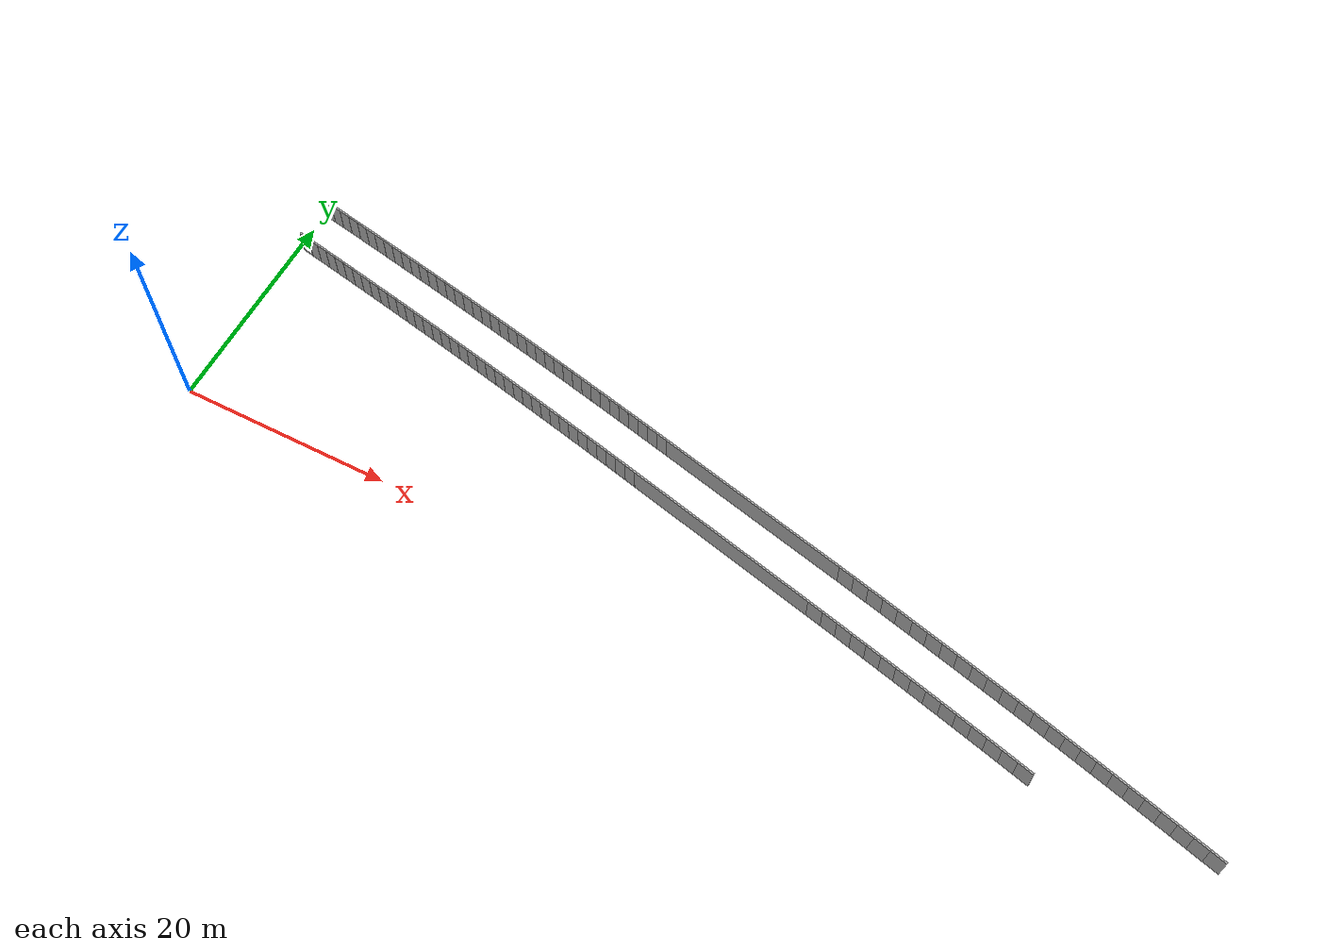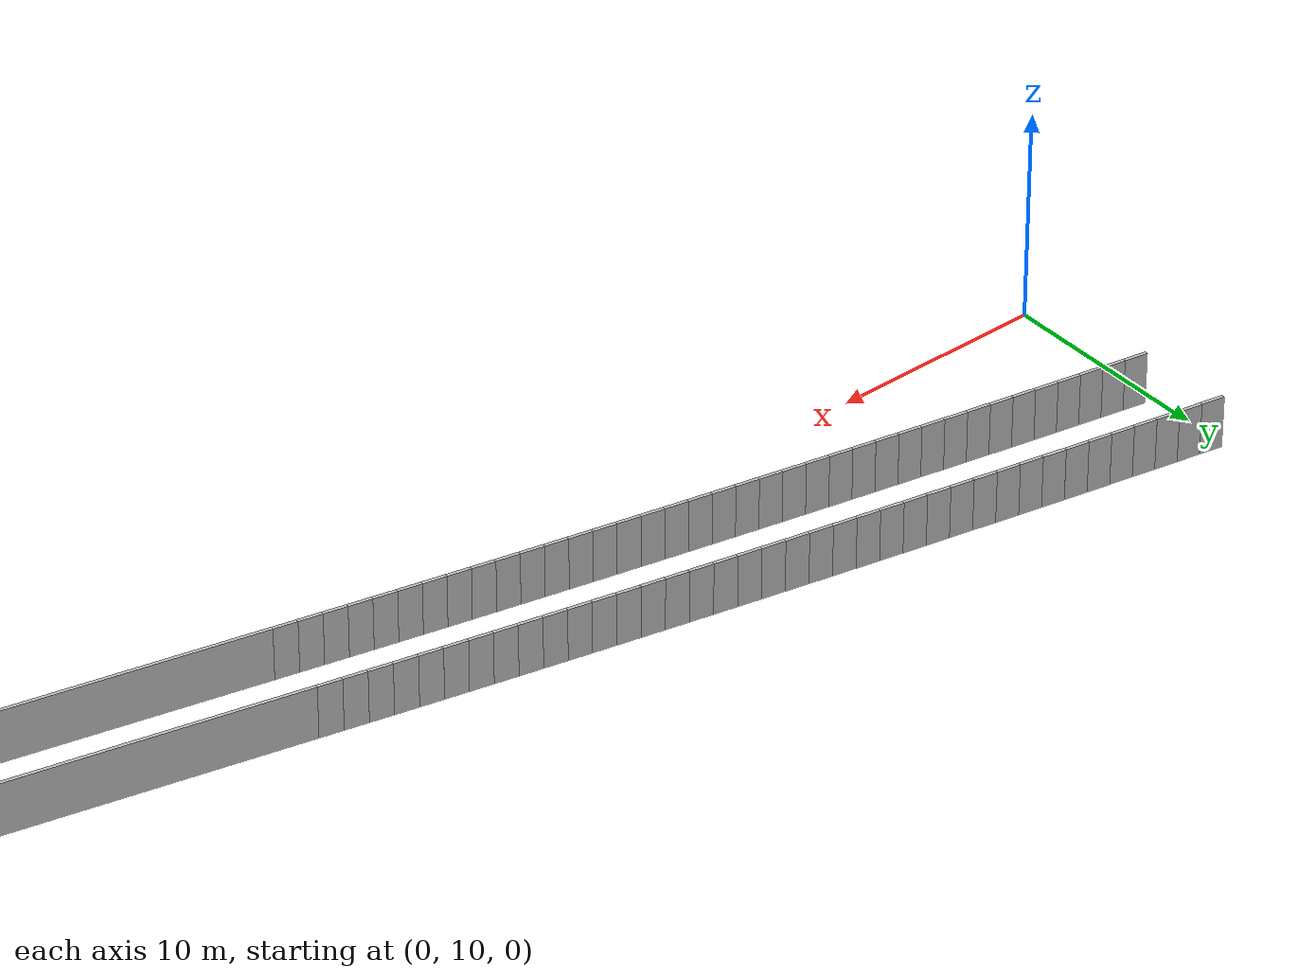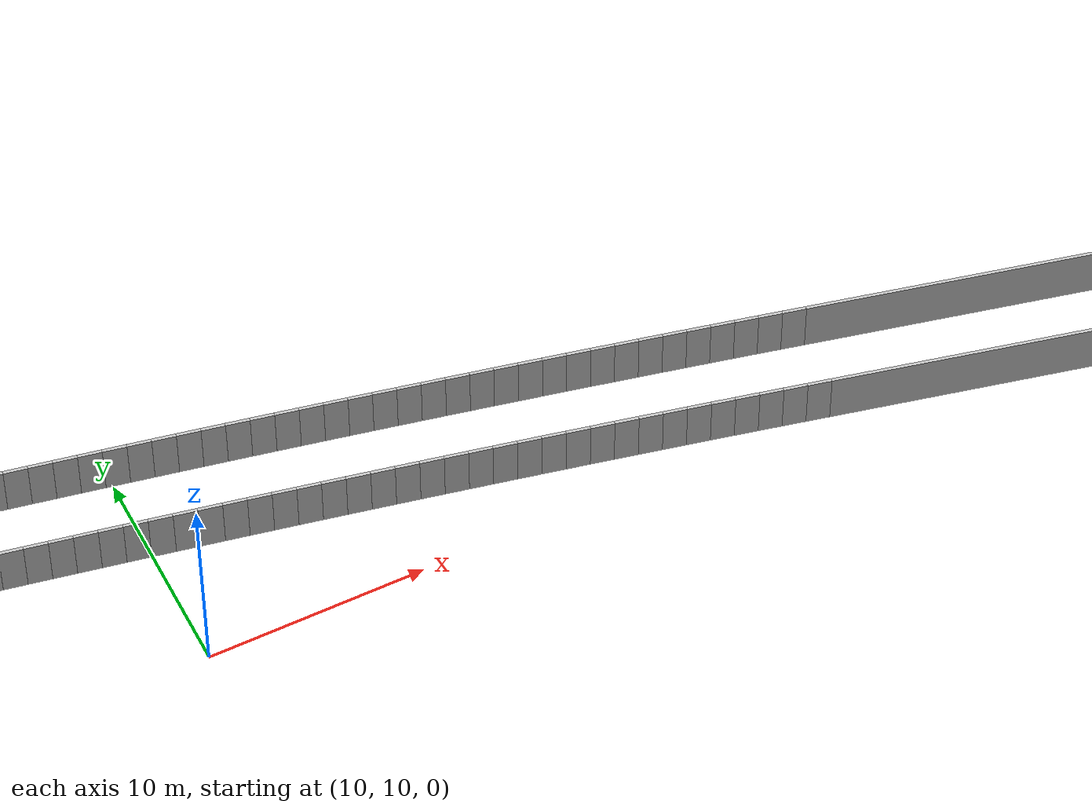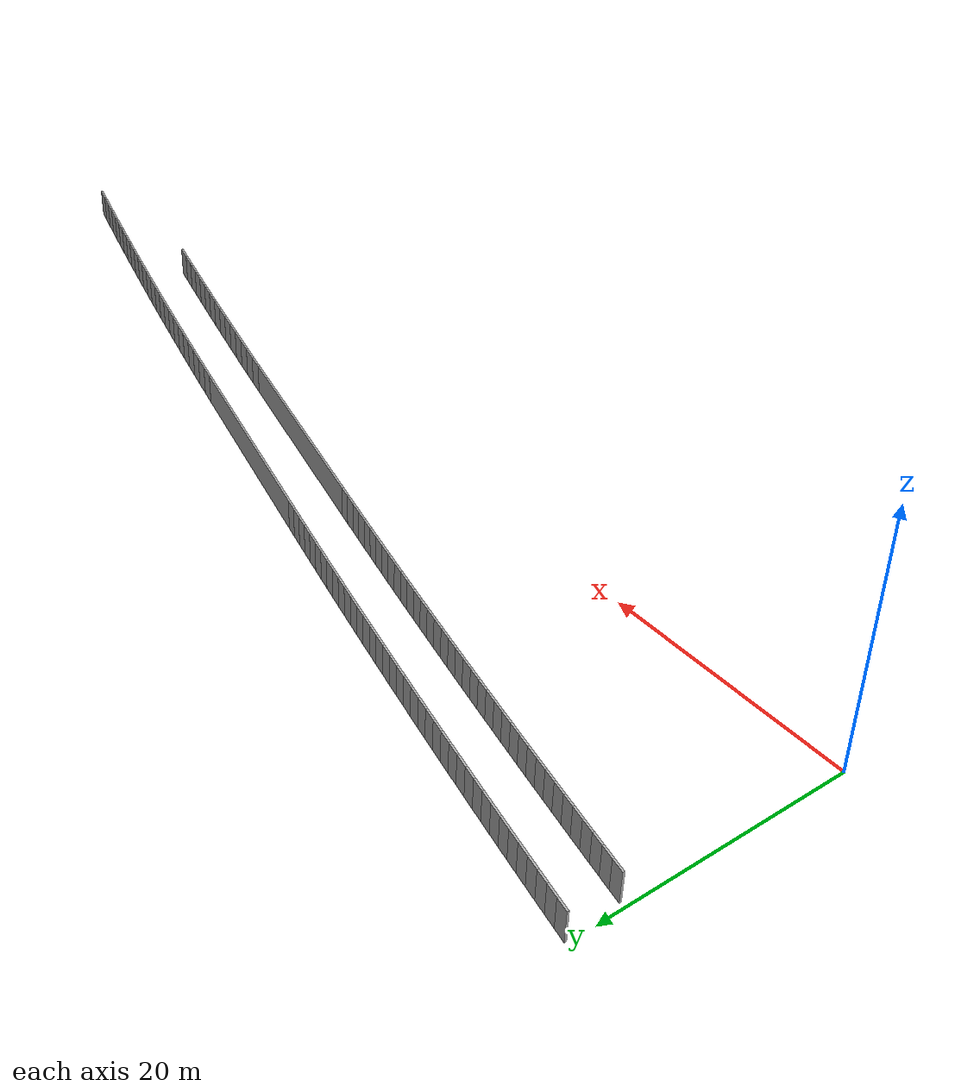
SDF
<sdf version="1.6">
 <model name="sps_1523">
  <static>1</static>
  <allow_auto_disable>0</allow_auto_disable>
  <link name="Wall318">
   <collision name="collision"><geometry><box><size>18.671 0.15 2.5</size></box></geometry></collision>
   <visual name="visual">
    <geometry><box><size>18.671 0.15 2.5</size></box></geometry>
    <transparency>0.0</transparency>
   </visual>
   <pose>48.5033 7.4247 1.25 0 -0 2.91246</pose>
  </link>
  <link name="Wall650">
   <collision name="collision"><geometry><box><size>18.6821 0.15 2.5</size></box></geometry></collision>
   <visual name="visual">
    <geometry><box><size>18.6821 0.15 2.5</size></box></geometry>
    <transparency>0.0</transparency>
   </visual>
   <pose>49.4523 11.4541 1.25 0 0 -0.229081</pose>
  </link>
  <link name="Wall8144">
   <collision name="collision"><geometry><box><size>1.07591 0.15 2.5</size></box></geometry></collision>
   <visual name="visual">
    <geometry><box><size>1.07591 0.15 2.5</size></box></geometry>
    <transparency>0.0</transparency>
   </visual>
   <pose>38.8879 9.66731 1.25 0 -0 2.91245</pose>
  </link>
  <link name="Wall8145">
   <collision name="collision"><geometry><box><size>1.07587 0.15 2.5</size></box></geometry></collision>
   <visual name="visual">
    <geometry><box><size>1.07587 0.15 2.5</size></box></geometry>
    <transparency>0.0</transparency>
   </visual>
   <pose>37.84 9.91121 1.25 0 -0 2.91337</pose>
  </link>
  <link name="Wall8146">
   <collision name="collision"><geometry><box><size>1.07597 0.15 2.5</size></box></geometry></collision>
   <visual name="visual">
    <geometry><box><size>1.07597 0.15 2.5</size></box></geometry>
    <transparency>0.0</transparency>
   </visual>
   <pose>36.7919 10.1539 1.25 0 -0 2.91473</pose>
  </link>
  <link name="Wall8147">
   <collision name="collision"><geometry><box><size>1.07592 0.15 2.5</size></box></geometry></collision>
   <visual name="visual">
    <geometry><box><size>1.07592 0.15 2.5</size></box></geometry>
    <transparency>0.0</transparency>
   </visual>
   <pose>35.7434 10.3954 1.25 0 -0 2.91571</pose>
  </link>
  <link name="Wall8148">
   <collision name="collision"><geometry><box><size>1.07607 0.15 2.5</size></box></geometry></collision>
   <visual name="visual">
    <geometry><box><size>1.07607 0.15 2.5</size></box></geometry>
    <transparency>0.0</transparency>
   </visual>
   <pose>34.6946 10.6358 1.25 0 -0 2.91685</pose>
  </link>
  <link name="Wall8149">
   <collision name="collision"><geometry><box><size>1.07598 0.15 2.5</size></box></geometry></collision>
   <visual name="visual">
    <geometry><box><size>1.07598 0.15 2.5</size></box></geometry>
    <transparency>0.0</transparency>
   </visual>
   <pose>33.6455 10.875 1.25 0 -0 2.918</pose>
  </link>
  <link name="Wall8150">
   <collision name="collision"><geometry><box><size>1.07596 0.15 2.5</size></box></geometry></collision>
   <visual name="visual">
    <geometry><box><size>1.07596 0.15 2.5</size></box></geometry>
    <transparency>0.0</transparency>
   </visual>
   <pose>32.5962 11.113 1.25 0 -0 2.9191</pose>
  </link>
  <link name="Wall8151">
   <collision name="collision"><geometry><box><size>1.07581 0.15 2.5</size></box></geometry></collision>
   <visual name="visual">
    <geometry><box><size>1.07581 0.15 2.5</size></box></geometry>
    <transparency>0.0</transparency>
   </visual>
   <pose>31.5467 11.3498 1.25 0 -0 2.92023</pose>
  </link>
  <link name="Wall8152">
   <collision name="collision"><geometry><box><size>1.07596 0.15 2.5</size></box></geometry></collision>
   <visual name="visual">
    <geometry><box><size>1.07596 0.15 2.5</size></box></geometry>
    <transparency>0.0</transparency>
   </visual>
   <pose>30.4969 11.5854 1.25 0 -0 2.92142</pose>
  </link>
  <link name="Wall8153">
   <collision name="collision"><geometry><box><size>1.07595 0.15 2.5</size></box></geometry></collision>
   <visual name="visual">
    <geometry><box><size>1.07595 0.15 2.5</size></box></geometry>
    <transparency>0.0</transparency>
   </visual>
   <pose>29.4468 11.8198 1.25 0 -0 2.92252</pose>
  </link>
  <link name="Wall8154">
   <collision name="collision"><geometry><box><size>1.07603 0.15 2.5</size></box></geometry></collision>
   <visual name="visual">
    <geometry><box><size>1.07603 0.15 2.5</size></box></geometry>
    <transparency>0.0</transparency>
   </visual>
   <pose>28.3964 12.053 1.25 0 -0 2.92376</pose>
  </link>
  <link name="Wall8155">
   <collision name="collision"><geometry><box><size>1.07597 0.15 2.5</size></box></geometry></collision>
   <visual name="visual">
    <geometry><box><size>1.07597 0.15 2.5</size></box></geometry>
    <transparency>0.0</transparency>
   </visual>
   <pose>27.3457 12.285 1.25 0 -0 2.92479</pose>
  </link>
  <link name="Wall8156">
   <collision name="collision"><geometry><box><size>1.07593 0.15 2.5</size></box></geometry></collision>
   <visual name="visual">
    <geometry><box><size>1.07593 0.15 2.5</size></box></geometry>
    <transparency>0.0</transparency>
   </visual>
   <pose>26.2948 12.5158 1.25 0 -0 2.92601</pose>
  </link>
  <link name="Wall8157">
   <collision name="collision"><geometry><box><size>1.07586 0.15 2.5</size></box></geometry></collision>
   <visual name="visual">
    <geometry><box><size>1.07586 0.15 2.5</size></box></geometry>
    <transparency>0.0</transparency>
   </visual>
   <pose>25.2436 12.7454 1.25 0 -0 2.9271</pose>
  </link>
  <link name="Wall8158">
   <collision name="collision"><geometry><box><size>1.07601 0.15 2.5</size></box></geometry></collision>
   <visual name="visual">
    <geometry><box><size>1.07601 0.15 2.5</size></box></geometry>
    <transparency>0.0</transparency>
   </visual>
   <pose>24.1923 12.9739 1.25 0 -0 2.92805</pose>
  </link>
  <link name="Wall8159">
   <collision name="collision"><geometry><box><size>1.07594 0.15 2.5</size></box></geometry></collision>
   <visual name="visual">
    <geometry><box><size>1.07594 0.15 2.5</size></box></geometry>
    <transparency>0.0</transparency>
   </visual>
   <pose>23.1406 13.2012 1.25 0 -0 2.92943</pose>
  </link>
  <link name="Wall8160">
   <collision name="collision"><geometry><box><size>1.07606 0.15 2.5</size></box></geometry></collision>
   <visual name="visual">
    <geometry><box><size>1.07606 0.15 2.5</size></box></geometry>
    <transparency>0.0</transparency>
   </visual>
   <pose>22.0886 13.4272 1.25 0 -0 2.93056</pose>
  </link>
  <link name="Wall8161">
   <collision name="collision"><geometry><box><size>1.07582 0.15 2.5</size></box></geometry></collision>
   <visual name="visual">
    <geometry><box><size>1.07582 0.15 2.5</size></box></geometry>
    <transparency>0.0</transparency>
   </visual>
   <pose>21.0364 13.652 1.25 0 -0 2.93161</pose>
  </link>
  <link name="Wall8162">
   <collision name="collision"><geometry><box><size>1.07597 0.15 2.5</size></box></geometry></collision>
   <visual name="visual">
    <geometry><box><size>1.07597 0.15 2.5</size></box></geometry>
    <transparency>0.0</transparency>
   </visual>
   <pose>19.984 13.8756 1.25 0 -0 2.93286</pose>
  </link>
  <link name="Wall8163">
   <collision name="collision"><geometry><box><size>1.07609 0.15 2.5</size></box></geometry></collision>
   <visual name="visual">
    <geometry><box><size>1.07609 0.15 2.5</size></box></geometry>
    <transparency>0.0</transparency>
   </visual>
   <pose>18.9312 14.098 1.25 0 -0 2.93399</pose>
  </link>
  <link name="Wall8164">
   <collision name="collision"><geometry><box><size>1.07594 0.15 2.5</size></box></geometry></collision>
   <visual name="visual">
    <geometry><box><size>1.07594 0.15 2.5</size></box></geometry>
    <transparency>0.0</transparency>
   </visual>
   <pose>17.8782 14.3193 1.25 0 -0 2.93489</pose>
  </link>
  <link name="Wall8165">
   <collision name="collision"><geometry><box><size>1.07602 0.15 2.5</size></box></geometry></collision>
   <visual name="visual">
    <geometry><box><size>1.07602 0.15 2.5</size></box></geometry>
    <transparency>0.0</transparency>
   </visual>
   <pose>16.8249 14.5394 1.25 0 -0 2.93623</pose>
  </link>
  <link name="Wall8166">
   <collision name="collision"><geometry><box><size>1.07593 0.15 2.5</size></box></geometry></collision>
   <visual name="visual">
    <geometry><box><size>1.07593 0.15 2.5</size></box></geometry>
    <transparency>0.0</transparency>
   </visual>
   <pose>15.7714 14.7582 1.25 0 -0 2.93743</pose>
  </link>
  <link name="Wall8167">
   <collision name="collision"><geometry><box><size>1.07589 0.15 2.5</size></box></geometry></collision>
   <visual name="visual">
    <geometry><box><size>1.07589 0.15 2.5</size></box></geometry>
    <transparency>0.0</transparency>
   </visual>
   <pose>14.7178 14.9758 1.25 0 -0 2.93847</pose>
  </link>
  <link name="Wall8168">
   <collision name="collision"><geometry><box><size>1.07605 0.15 2.5</size></box></geometry></collision>
   <visual name="visual">
    <geometry><box><size>1.07605 0.15 2.5</size></box></geometry>
    <transparency>0.0</transparency>
   </visual>
   <pose>13.6638 15.1922 1.25 0 -0 2.93971</pose>
  </link>
  <link name="Wall8169">
   <collision name="collision"><geometry><box><size>1.07606 0.15 2.5</size></box></geometry></collision>
   <visual name="visual">
    <geometry><box><size>1.07606 0.15 2.5</size></box></geometry>
    <transparency>0.0</transparency>
   </visual>
   <pose>12.6095 15.4074 1.25 0 -0 2.94082</pose>
  </link>
  <link name="Wall8170">
   <collision name="collision"><geometry><box><size>1.07577 0.15 2.5</size></box></geometry></collision>
   <visual name="visual">
    <geometry><box><size>1.07577 0.15 2.5</size></box></geometry>
    <transparency>0.0</transparency>
   </visual>
   <pose>11.555 15.6214 1.25 0 -0 2.94186</pose>
  </link>
  <link name="Wall8171">
   <collision name="collision"><geometry><box><size>1.07616 0.15 2.5</size></box></geometry></collision>
   <visual name="visual">
    <geometry><box><size>1.07616 0.15 2.5</size></box></geometry>
    <transparency>0.0</transparency>
   </visual>
   <pose>10.5004 15.8343 1.25 0 -0 2.94292</pose>
  </link>
  <link name="Wall8172">
   <collision name="collision"><geometry><box><size>1.07589 0.15 2.5</size></box></geometry></collision>
   <visual name="visual">
    <geometry><box><size>1.07589 0.15 2.5</size></box></geometry>
    <transparency>0.0</transparency>
   </visual>
   <pose>9.44537 16.046 1.25 0 -0 2.9442</pose>
  </link>
  <link name="Wall8173">
   <collision name="collision"><geometry><box><size>1.07607 0.15 2.5</size></box></geometry></collision>
   <visual name="visual">
    <geometry><box><size>1.07607 0.15 2.5</size></box></geometry>
    <transparency>0.0</transparency>
   </visual>
   <pose>8.39016 16.2564 1.25 0 -0 2.94539</pose>
  </link>
  <link name="Wall8174">
   <collision name="collision"><geometry><box><size>1.07584 0.15 2.5</size></box></geometry></collision>
   <visual name="visual">
    <geometry><box><size>1.07584 0.15 2.5</size></box></geometry>
    <transparency>0.0</transparency>
   </visual>
   <pose>7.33474 16.4656 1.25 0 -0 2.94644</pose>
  </link>
  <link name="Wall8175">
   <collision name="collision"><geometry><box><size>1.07596 0.15 2.5</size></box></geometry></collision>
   <visual name="visual">
    <geometry><box><size>1.07596 0.15 2.5</size></box></geometry>
    <transparency>0.0</transparency>
   </visual>
   <pose>6.27914 16.6736 1.25 0 -0 2.94762</pose>
  </link>
  <link name="Wall8176">
   <collision name="collision"><geometry><box><size>1.07591 0.15 2.5</size></box></geometry></collision>
   <visual name="visual">
    <geometry><box><size>1.07591 0.15 2.5</size></box></geometry>
    <transparency>0.0</transparency>
   </visual>
   <pose>5.22326 16.8804 1.25 0 -0 2.94877</pose>
  </link>
  <link name="Wall8177">
   <collision name="collision"><geometry><box><size>1.07593 0.15 2.5</size></box></geometry></collision>
   <visual name="visual">
    <geometry><box><size>1.07593 0.15 2.5</size></box></geometry>
    <transparency>0.0</transparency>
   </visual>
   <pose>4.16717 17.086 1.25 0 -0 2.94987</pose>
  </link>
  <link name="Wall8178">
   <collision name="collision"><geometry><box><size>1.07609 0.15 2.5</size></box></geometry></collision>
   <visual name="visual">
    <geometry><box><size>1.07609 0.15 2.5</size></box></geometry>
    <transparency>0.0</transparency>
   </visual>
   <pose>3.11077 17.2905 1.25 0 -0 2.95088</pose>
  </link>
  <link name="Wall8179">
   <collision name="collision"><geometry><box><size>1.0759 0.15 2.5</size></box></geometry></collision>
   <visual name="visual">
    <geometry><box><size>1.0759 0.15 2.5</size></box></geometry>
    <transparency>0.0</transparency>
   </visual>
   <pose>2.05416 17.4938 1.25 0 -0 2.95212</pose>
  </link>
  <link name="Wall8180">
   <collision name="collision"><geometry><box><size>1.07603 0.15 2.5</size></box></geometry></collision>
   <visual name="visual">
    <geometry><box><size>1.07603 0.15 2.5</size></box></geometry>
    <transparency>0.0</transparency>
   </visual>
   <pose>0.997337 17.6958 1.25 0 -0 2.9533</pose>
  </link>
  <link name="Wall9109">
   <collision name="collision"><geometry><box><size>1.08065 0.15 2.5</size></box></geometry></collision>
   <visual name="visual">
    <geometry><box><size>1.08065 0.15 2.5</size></box></geometry>
    <transparency>0.0</transparency>
   </visual>
   <pose>39.8291 13.6981 1.25 0 -0 2.91231</pose>
  </link>
  <link name="Wall9110">
   <collision name="collision"><geometry><box><size>1.08062 0.15 2.5</size></box></geometry></collision>
   <visual name="visual">
    <geometry><box><size>1.08062 0.15 2.5</size></box></geometry>
    <transparency>0.0</transparency>
   </visual>
   <pose>38.7766 13.9431 1.25 0 -0 2.91341</pose>
  </link>
  <link name="Wall9111">
   <collision name="collision"><geometry><box><size>1.08075 0.15 2.5</size></box></geometry></collision>
   <visual name="visual">
    <geometry><box><size>1.08075 0.15 2.5</size></box></geometry>
    <transparency>0.0</transparency>
   </visual>
   <pose>37.7237 14.1869 1.25 0 -0 2.91465</pose>
  </link>
  <link name="Wall9112">
   <collision name="collision"><geometry><box><size>1.08061 0.15 2.5</size></box></geometry></collision>
   <visual name="visual">
    <geometry><box><size>1.08061 0.15 2.5</size></box></geometry>
    <transparency>0.0</transparency>
   </visual>
   <pose>36.6706 14.4295 1.25 0 -0 2.91573</pose>
  </link>
  <link name="Wall9113">
   <collision name="collision"><geometry><box><size>1.08075 0.15 2.5</size></box></geometry></collision>
   <visual name="visual">
    <geometry><box><size>1.08075 0.15 2.5</size></box></geometry>
    <transparency>0.0</transparency>
   </visual>
   <pose>35.6173 14.6709 1.25 0 -0 2.91691</pose>
  </link>
  <link name="Wall9114">
   <collision name="collision"><geometry><box><size>1.08073 0.15 2.5</size></box></geometry></collision>
   <visual name="visual">
    <geometry><box><size>1.08073 0.15 2.5</size></box></geometry>
    <transparency>0.0</transparency>
   </visual>
   <pose>34.5636 14.9111 1.25 0 -0 2.91801</pose>
  </link>
  <link name="Wall9115">
   <collision name="collision"><geometry><box><size>1.08064 0.15 2.5</size></box></geometry></collision>
   <visual name="visual">
    <geometry><box><size>1.08064 0.15 2.5</size></box></geometry>
    <transparency>0.0</transparency>
   </visual>
   <pose>33.5096 15.1501 1.25 0 -0 2.91915</pose>
  </link>
  <link name="Wall9116">
   <collision name="collision"><geometry><box><size>1.08055 0.15 2.5</size></box></geometry></collision>
   <visual name="visual">
    <geometry><box><size>1.08055 0.15 2.5</size></box></geometry>
    <transparency>0.0</transparency>
   </visual>
   <pose>32.4555 15.3879 1.25 0 -0 2.92029</pose>
  </link>
  <link name="Wall9117">
   <collision name="collision"><geometry><box><size>1.08083 0.15 2.5</size></box></geometry></collision>
   <visual name="visual">
    <geometry><box><size>1.08083 0.15 2.5</size></box></geometry>
    <transparency>0.0</transparency>
   </visual>
   <pose>31.4011 15.6245 1.25 0 -0 2.92145</pose>
  </link>
  <link name="Wall9118">
   <collision name="collision"><geometry><box><size>1.08067 0.15 2.5</size></box></geometry></collision>
   <visual name="visual">
    <geometry><box><size>1.08067 0.15 2.5</size></box></geometry>
    <transparency>0.0</transparency>
   </visual>
   <pose>30.3463 15.86 1.25 0 -0 2.9224</pose>
  </link>
  <link name="Wall9119">
   <collision name="collision"><geometry><box><size>1.08054 0.15 2.5</size></box></geometry></collision>
   <visual name="visual">
    <geometry><box><size>1.08054 0.15 2.5</size></box></geometry>
    <transparency>0.0</transparency>
   </visual>
   <pose>29.2914 16.0943 1.25 0 -0 2.9237</pose>
  </link>
  <link name="Wall9120">
   <collision name="collision"><geometry><box><size>1.08071 0.15 2.5</size></box></geometry></collision>
   <visual name="visual">
    <geometry><box><size>1.08071 0.15 2.5</size></box></geometry>
    <transparency>0.0</transparency>
   </visual>
   <pose>28.2362 16.3273 1.25 0 -0 2.92483</pose>
  </link>
  <link name="Wall9121">
   <collision name="collision"><geometry><box><size>1.08063 0.15 2.5</size></box></geometry></collision>
   <visual name="visual">
    <geometry><box><size>1.08063 0.15 2.5</size></box></geometry>
    <transparency>0.0</transparency>
   </visual>
   <pose>27.1807 16.5591 1.25 0 -0 2.92597</pose>
  </link>
  <link name="Wall9122">
   <collision name="collision"><geometry><box><size>1.08072 0.15 2.5</size></box></geometry></collision>
   <visual name="visual">
    <geometry><box><size>1.08072 0.15 2.5</size></box></geometry>
    <transparency>0.0</transparency>
   </visual>
   <pose>26.1249 16.7897 1.25 0 -0 2.92715</pose>
  </link>
  <link name="Wall9123">
   <collision name="collision"><geometry><box><size>1.08072 0.15 2.5</size></box></geometry></collision>
   <visual name="visual">
    <geometry><box><size>1.08072 0.15 2.5</size></box></geometry>
    <transparency>0.0</transparency>
   </visual>
   <pose>25.0688 17.0191 1.25 0 -0 2.92825</pose>
  </link>
  <link name="Wall9124">
   <collision name="collision"><geometry><box><size>1.08064 0.15 2.5</size></box></geometry></collision>
   <visual name="visual">
    <geometry><box><size>1.08064 0.15 2.5</size></box></geometry>
    <transparency>0.0</transparency>
   </visual>
   <pose>24.0125 17.2473 1.25 0 -0 2.92939</pose>
  </link>
  <link name="Wall9125">
   <collision name="collision"><geometry><box><size>1.08085 0.15 2.5</size></box></geometry></collision>
   <visual name="visual">
    <geometry><box><size>1.08085 0.15 2.5</size></box></geometry>
    <transparency>0.0</transparency>
   </visual>
   <pose>22.9559 17.4744 1.25 0 -0 2.93035</pose>
  </link>
  <link name="Wall9126">
   <collision name="collision"><geometry><box><size>1.08072 0.15 2.5</size></box></geometry></collision>
   <visual name="visual">
    <geometry><box><size>1.08072 0.15 2.5</size></box></geometry>
    <transparency>0.0</transparency>
   </visual>
   <pose>21.8989 17.7003 1.25 0 -0 2.93171</pose>
  </link>
  <link name="Wall9127">
   <collision name="collision"><geometry><box><size>1.08048 0.15 2.5</size></box></geometry></collision>
   <visual name="visual">
    <geometry><box><size>1.08048 0.15 2.5</size></box></geometry>
    <transparency>0.0</transparency>
   </visual>
   <pose>20.8419 17.9249 1.25 0 -0 2.93276</pose>
  </link>
  <link name="Wall9128">
   <collision name="collision"><geometry><box><size>1.08078 0.15 2.5</size></box></geometry></collision>
   <visual name="visual">
    <geometry><box><size>1.08078 0.15 2.5</size></box></geometry>
    <transparency>0.0</transparency>
   </visual>
   <pose>19.7847 18.1483 1.25 0 -0 2.93392</pose>
  </link>
  <link name="Wall9129">
   <collision name="collision"><geometry><box><size>1.08057 0.15 2.5</size></box></geometry></collision>
   <visual name="visual">
    <geometry><box><size>1.08057 0.15 2.5</size></box></geometry>
    <transparency>0.0</transparency>
   </visual>
   <pose>18.7271 18.3705 1.25 0 -0 2.93509</pose>
  </link>
  <link name="Wall9130">
   <collision name="collision"><geometry><box><size>1.0807 0.15 2.5</size></box></geometry></collision>
   <visual name="visual">
    <geometry><box><size>1.0807 0.15 2.5</size></box></geometry>
    <transparency>0.0</transparency>
   </visual>
   <pose>17.6693 18.5915 1.25 0 -0 2.93621</pose>
  </link>
  <link name="Wall9131">
   <collision name="collision"><geometry><box><size>1.0807 0.15 2.5</size></box></geometry></collision>
   <visual name="visual">
    <geometry><box><size>1.0807 0.15 2.5</size></box></geometry>
    <transparency>0.0</transparency>
   </visual>
   <pose>16.6112 18.8113 1.25 0 -0 2.93731</pose>
  </link>
  <link name="Wall9132">
   <collision name="collision"><geometry><box><size>1.08062 0.15 2.5</size></box></geometry></collision>
   <visual name="visual">
    <geometry><box><size>1.08062 0.15 2.5</size></box></geometry>
    <transparency>0.0</transparency>
   </visual>
   <pose>15.5528 19.0299 1.25 0 -0 2.9385</pose>
  </link>
  <link name="Wall9133">
   <collision name="collision"><geometry><box><size>1.08074 0.15 2.5</size></box></geometry></collision>
   <visual name="visual">
    <geometry><box><size>1.08074 0.15 2.5</size></box></geometry>
    <transparency>0.0</transparency>
   </visual>
   <pose>14.4943 19.2473 1.25 0 -0 2.93962</pose>
  </link>
  <link name="Wall9134">
   <collision name="collision"><geometry><box><size>1.08072 0.15 2.5</size></box></geometry></collision>
   <visual name="visual">
    <geometry><box><size>1.08072 0.15 2.5</size></box></geometry>
    <transparency>0.0</transparency>
   </visual>
   <pose>13.4354 19.4634 1.25 0 -0 2.94089</pose>
  </link>
  <link name="Wall9135">
   <collision name="collision"><geometry><box><size>1.08068 0.15 2.5</size></box></geometry></collision>
   <visual name="visual">
    <geometry><box><size>1.08068 0.15 2.5</size></box></geometry>
    <transparency>0.0</transparency>
   </visual>
   <pose>12.3762 19.6783 1.25 0 -0 2.94192</pose>
  </link>
  <link name="Wall9136">
   <collision name="collision"><geometry><box><size>1.08063 0.15 2.5</size></box></geometry></collision>
   <visual name="visual">
    <geometry><box><size>1.08063 0.15 2.5</size></box></geometry>
    <transparency>0.0</transparency>
   </visual>
   <pose>11.3169 19.8921 1.25 0 -0 2.943</pose>
  </link>
  <link name="Wall9137">
   <collision name="collision"><geometry><box><size>1.08082 0.15 2.5</size></box></geometry></collision>
   <visual name="visual">
    <geometry><box><size>1.08082 0.15 2.5</size></box></geometry>
    <transparency>0.0</transparency>
   </visual>
   <pose>10.2573 20.1047 1.25 0 -0 2.94413</pose>
  </link>
  <link name="Wall9138">
   <collision name="collision"><geometry><box><size>1.08071 0.15 2.5</size></box></geometry></collision>
   <visual name="visual">
    <geometry><box><size>1.08071 0.15 2.5</size></box></geometry>
    <transparency>0.0</transparency>
   </visual>
   <pose>9.19744 20.316 1.25 0 -0 2.94549</pose>
  </link>
  <link name="Wall9139">
   <collision name="collision"><geometry><box><size>1.08052 0.15 2.5</size></box></geometry></collision>
   <visual name="visual">
    <geometry><box><size>1.08052 0.15 2.5</size></box></geometry>
    <transparency>0.0</transparency>
   </visual>
   <pose>8.13744 20.5261 1.25 0 -0 2.94638</pose>
  </link>
  <link name="Wall9140">
   <collision name="collision"><geometry><box><size>1.0809 0.15 2.5</size></box></geometry></collision>
   <visual name="visual">
    <geometry><box><size>1.0809 0.15 2.5</size></box></geometry>
    <transparency>0.0</transparency>
   </visual>
   <pose>7.07714 20.7351 1.25 0 -0 2.94754</pose>
  </link>
  <link name="Wall9141">
   <collision name="collision"><geometry><box><size>1.08061 0.15 2.5</size></box></geometry></collision>
   <visual name="visual">
    <geometry><box><size>1.08061 0.15 2.5</size></box></geometry>
    <transparency>0.0</transparency>
   </visual>
   <pose>6.01653 20.9428 1.25 0 -0 2.94887</pose>
  </link>
  <link name="Wall9142">
   <collision name="collision"><geometry><box><size>1.08061 0.15 2.5</size></box></geometry></collision>
   <visual name="visual">
    <geometry><box><size>1.08061 0.15 2.5</size></box></geometry>
    <transparency>0.0</transparency>
   </visual>
   <pose>4.95583 21.1493 1.25 0 -0 2.94979</pose>
  </link>
  <link name="Wall9143">
   <collision name="collision"><geometry><box><size>1.08052 0.15 2.5</size></box></geometry></collision>
   <visual name="visual">
    <geometry><box><size>1.08052 0.15 2.5</size></box></geometry>
    <transparency>0.0</transparency>
   </visual>
   <pose>3.89495 21.3546 1.25 0 -0 2.9511</pose>
  </link>
  <link name="Wall9144">
   <collision name="collision"><geometry><box><size>1.08075 0.15 2.5</size></box></geometry></collision>
   <visual name="visual">
    <geometry><box><size>1.08075 0.15 2.5</size></box></geometry>
    <transparency>0.0</transparency>
   </visual>
   <pose>2.83376 21.5587 1.25 0 -0 2.95206</pose>
  </link>
  <link name="Wall9145">
   <collision name="collision"><geometry><box><size>1.08067 0.15 2.5</size></box></geometry></collision>
   <visual name="visual">
    <geometry><box><size>1.08067 0.15 2.5</size></box></geometry>
    <transparency>0.0</transparency>
   </visual>
   <pose>1.77227 21.7616 1.25 0 -0 2.95337</pose>
  </link>
  <link name="Wall9146">
   <collision name="collision"><geometry><box><size>1.08073 0.15 2.5</size></box></geometry></collision>
   <visual name="visual">
    <geometry><box><size>1.08073 0.15 2.5</size></box></geometry>
    <transparency>0.0</transparency>
   </visual>
   <pose>0.710563 21.9633 1.25 0 -0 2.9543</pose>
  </link>
  <link name="Wall10792">
   <collision name="collision"><geometry><box><size>1.49661 0.15 2.5</size></box></geometry></collision>
   <visual name="visual">
    <geometry><box><size>1.49661 0.15 2.5</size></box></geometry>
    <transparency>0.0</transparency>
   </visual>
   <pose>78.6499 0.0580892 1.25 0 -0 2.88601</pose>
  </link>
  <link name="Wall10793">
   <collision name="collision"><geometry><box><size>1.49649 0.15 2.5</size></box></geometry></collision>
   <visual name="visual">
    <geometry><box><size>1.49649 0.15 2.5</size></box></geometry>
    <transparency>0.0</transparency>
   </visual>
   <pose>77.2017 0.435378 1.25 0 -0 2.88746</pose>
  </link>
  <link name="Wall10794">
   <collision name="collision"><geometry><box><size>1.49641 0.15 2.5</size></box></geometry></collision>
   <visual name="visual">
    <geometry><box><size>1.49641 0.15 2.5</size></box></geometry>
    <transparency>0.0</transparency>
   </visual>
   <pose>75.753 0.810378 1.25 0 -0 2.88914</pose>
  </link>
  <link name="Wall10795">
   <collision name="collision"><geometry><box><size>1.49647 0.15 2.5</size></box></geometry></collision>
   <visual name="visual">
    <geometry><box><size>1.49647 0.15 2.5</size></box></geometry>
    <transparency>0.0</transparency>
   </visual>
   <pose>74.3037 1.18309 1.25 0 -0 2.89062</pose>
  </link>
  <link name="Wall10796">
   <collision name="collision"><geometry><box><size>1.49669 0.15 2.5</size></box></geometry></collision>
   <visual name="visual">
    <geometry><box><size>1.49669 0.15 2.5</size></box></geometry>
    <transparency>0.0</transparency>
   </visual>
   <pose>72.8537 1.55351 1.25 0 -0 2.89234</pose>
  </link>
  <link name="Wall10797">
   <collision name="collision"><geometry><box><size>1.49651 0.15 2.5</size></box></geometry></collision>
   <visual name="visual">
    <geometry><box><size>1.49651 0.15 2.5</size></box></geometry>
    <transparency>0.0</transparency>
   </visual>
   <pose>71.403 1.92161 1.25 0 -0 2.89382</pose>
  </link>
  <link name="Wall10798">
   <collision name="collision"><geometry><box><size>1.49626 0.15 2.5</size></box></geometry></collision>
   <visual name="visual">
    <geometry><box><size>1.49626 0.15 2.5</size></box></geometry>
    <transparency>0.0</transparency>
   </visual>
   <pose>69.952 2.2874 1.25 0 -0 2.89547</pose>
  </link>
  <link name="Wall10799">
   <collision name="collision"><geometry><box><size>1.49657 0.15 2.5</size></box></geometry></collision>
   <visual name="visual">
    <geometry><box><size>1.49657 0.15 2.5</size></box></geometry>
    <transparency>0.0</transparency>
   </visual>
   <pose>68.5004 2.65089 1.25 0 -0 2.89699</pose>
  </link>
  <link name="Wall10800">
   <collision name="collision"><geometry><box><size>1.49652 0.15 2.5</size></box></geometry></collision>
   <visual name="visual">
    <geometry><box><size>1.49652 0.15 2.5</size></box></geometry>
    <transparency>0.0</transparency>
   </visual>
   <pose>67.0481 3.0121 1.25 0 -0 2.89866</pose>
  </link>
  <link name="Wall10801">
   <collision name="collision"><geometry><box><size>1.49641 0.15 2.5</size></box></geometry></collision>
   <visual name="visual">
    <geometry><box><size>1.49641 0.15 2.5</size></box></geometry>
    <transparency>0.0</transparency>
   </visual>
   <pose>65.5954 3.37099 1.25 0 -0 2.90016</pose>
  </link>
  <link name="Wall10802">
   <collision name="collision"><geometry><box><size>1.49665 0.15 2.5</size></box></geometry></collision>
   <visual name="visual">
    <geometry><box><size>1.49665 0.15 2.5</size></box></geometry>
    <transparency>0.0</transparency>
   </visual>
   <pose>64.142 3.72768 1.25 0 -0 2.90171</pose>
  </link>
  <link name="Wall10803">
   <collision name="collision"><geometry><box><size>1.4965 0.15 2.5</size></box></geometry></collision>
   <visual name="visual">
    <geometry><box><size>1.4965 0.15 2.5</size></box></geometry>
    <transparency>0.0</transparency>
   </visual>
   <pose>62.6879 4.08208 1.25 0 -0 2.90332</pose>
  </link>
  <link name="Wall10804">
   <collision name="collision"><geometry><box><size>1.49648 0.15 2.5</size></box></geometry></collision>
   <visual name="visual">
    <geometry><box><size>1.49648 0.15 2.5</size></box></geometry>
    <transparency>0.0</transparency>
   </visual>
   <pose>61.2335 4.4341 1.25 0 -0 2.90495</pose>
  </link>
  <link name="Wall10805">
   <collision name="collision"><geometry><box><size>1.49654 0.15 2.5</size></box></geometry></collision>
   <visual name="visual">
    <geometry><box><size>1.49654 0.15 2.5</size></box></geometry>
    <transparency>0.0</transparency>
   </visual>
   <pose>59.7784 4.7838 1.25 0 -0 2.90652</pose>
  </link>
  <link name="Wall10806">
   <collision name="collision"><geometry><box><size>1.49641 0.15 2.5</size></box></geometry></collision>
   <visual name="visual">
    <geometry><box><size>1.49641 0.15 2.5</size></box></geometry>
    <transparency>0.0</transparency>
   </visual>
   <pose>58.3228 5.13118 1.25 0 -0 2.90813</pose>
  </link>
  <link name="Wall11379">
   <collision name="collision"><geometry><box><size>1.50309 0.15 2.5</size></box></geometry></collision>
   <visual name="visual">
    <geometry><box><size>1.50309 0.15 2.5</size></box></geometry>
    <transparency>0.0</transparency>
   </visual>
   <pose>94.208 0.147475 1.25 0 -0 2.87002</pose>
  </link>
  <link name="Wall11380">
   <collision name="collision"><geometry><box><size>1.50298 0.15 2.5</size></box></geometry></collision>
   <visual name="visual">
    <geometry><box><size>1.50298 0.15 2.5</size></box></geometry>
    <transparency>0.0</transparency>
   </visual>
   <pose>92.7598 0.549483 1.25 0 -0 2.87164</pose>
  </link>
  <link name="Wall11381">
   <collision name="collision"><geometry><box><size>1.50315 0.15 2.5</size></box></geometry></collision>
   <visual name="visual">
    <geometry><box><size>1.50315 0.15 2.5</size></box></geometry>
    <transparency>0.0</transparency>
   </visual>
   <pose>91.3108 0.94908 1.25 0 -0 2.87336</pose>
  </link>
  <link name="Wall11382">
   <collision name="collision"><geometry><box><size>1.50311 0.15 2.5</size></box></geometry></collision>
   <visual name="visual">
    <geometry><box><size>1.50311 0.15 2.5</size></box></geometry>
    <transparency>0.0</transparency>
   </visual>
   <pose>89.8611 1.34627 1.25 0 -0 2.875</pose>
  </link>
  <link name="Wall11383">
   <collision name="collision"><geometry><box><size>1.50301 0.15 2.5</size></box></geometry></collision>
   <visual name="visual">
    <geometry><box><size>1.50301 0.15 2.5</size></box></geometry>
    <transparency>0.0</transparency>
   </visual>
   <pose>88.4108 1.74129 1.25 0 -0 2.87632</pose>
  </link>
  <link name="Wall11384">
   <collision name="collision"><geometry><box><size>1.50313 0.15 2.5</size></box></geometry></collision>
   <visual name="visual">
    <geometry><box><size>1.50313 0.15 2.5</size></box></geometry>
    <transparency>0.0</transparency>
   </visual>
   <pose>86.96 2.1342 1.25 0 -0 2.8779</pose>
  </link>
  <link name="Wall11385">
   <collision name="collision"><geometry><box><size>1.50334 0.15 2.5</size></box></geometry></collision>
   <visual name="visual">
    <geometry><box><size>1.50334 0.15 2.5</size></box></geometry>
    <transparency>0.0</transparency>
   </visual>
   <pose>85.5084 2.52479 1.25 0 -0 2.87958</pose>
  </link>
  <link name="Wall11386">
   <collision name="collision"><geometry><box><size>1.50307 0.15 2.5</size></box></geometry></collision>
   <visual name="visual">
    <geometry><box><size>1.50307 0.15 2.5</size></box></geometry>
    <transparency>0.0</transparency>
   </visual>
   <pose>84.0562 2.91301 1.25 0 -0 2.88117</pose>
  </link>
  <link name="Wall11387">
   <collision name="collision"><geometry><box><size>1.5028 0.15 2.5</size></box></geometry></collision>
   <visual name="visual">
    <geometry><box><size>1.5028 0.15 2.5</size></box></geometry>
    <transparency>0.0</transparency>
   </visual>
   <pose>82.6037 3.29881 1.25 0 -0 2.8828</pose>
  </link>
  <link name="Wall11388">
   <collision name="collision"><geometry><box><size>1.50307 0.15 2.5</size></box></geometry></collision>
   <visual name="visual">
    <geometry><box><size>1.50307 0.15 2.5</size></box></geometry>
    <transparency>0.0</transparency>
   </visual>
   <pose>81.1505 3.6823 1.25 0 -0 2.88436</pose>
  </link>
  <link name="Wall11389">
   <collision name="collision"><geometry><box><size>1.5031 0.15 2.5</size></box></geometry></collision>
   <visual name="visual">
    <geometry><box><size>1.5031 0.15 2.5</size></box></geometry>
    <transparency>0.0</transparency>
   </visual>
   <pose>79.6966 4.06358 1.25 0 -0 2.88588</pose>
  </link>
  <link name="Wall11390">
   <collision name="collision"><geometry><box><size>1.50303 0.15 2.5</size></box></geometry></collision>
   <visual name="visual">
    <geometry><box><size>1.50303 0.15 2.5</size></box></geometry>
    <transparency>0.0</transparency>
   </visual>
   <pose>78.2421 4.44258 1.25 0 -0 2.8875</pose>
  </link>
  <link name="Wall11391">
   <collision name="collision"><geometry><box><size>1.50313 0.15 2.5</size></box></geometry></collision>
   <visual name="visual">
    <geometry><box><size>1.50313 0.15 2.5</size></box></geometry>
    <transparency>0.0</transparency>
   </visual>
   <pose>76.7869 4.81929 1.25 0 -0 2.88903</pose>
  </link>
  <link name="Wall11392">
   <collision name="collision"><geometry><box><size>1.50305 0.15 2.5</size></box></geometry></collision>
   <visual name="visual">
    <geometry><box><size>1.50305 0.15 2.5</size></box></geometry>
    <transparency>0.0</transparency>
   </visual>
   <pose>75.3312 5.19368 1.25 0 -0 2.89069</pose>
  </link>
  <link name="Wall11393">
   <collision name="collision"><geometry><box><size>1.50307 0.15 2.5</size></box></geometry></collision>
   <visual name="visual">
    <geometry><box><size>1.50307 0.15 2.5</size></box></geometry>
    <transparency>0.0</transparency>
   </visual>
   <pose>73.8749 5.56569 1.25 0 -0 2.89229</pose>
  </link>
  <link name="Wall11394">
   <collision name="collision"><geometry><box><size>1.50305 0.15 2.5</size></box></geometry></collision>
   <visual name="visual">
    <geometry><box><size>1.50305 0.15 2.5</size></box></geometry>
    <transparency>0.0</transparency>
   </visual>
   <pose>72.4181 5.93541 1.25 0 -0 2.89384</pose>
  </link>
  <link name="Wall11395">
   <collision name="collision"><geometry><box><size>1.50298 0.15 2.5</size></box></geometry></collision>
   <visual name="visual">
    <geometry><box><size>1.50298 0.15 2.5</size></box></geometry>
    <transparency>0.0</transparency>
   </visual>
   <pose>70.9607 6.3029 1.25 0 -0 2.89533</pose>
  </link>
  <link name="Wall11396">
   <collision name="collision"><geometry><box><size>1.50312 0.15 2.5</size></box></geometry></collision>
   <visual name="visual">
    <geometry><box><size>1.50312 0.15 2.5</size></box></geometry>
    <transparency>0.0</transparency>
   </visual>
   <pose>69.5026 6.66811 1.25 0 -0 2.89699</pose>
  </link>
  <link name="Wall11397">
   <collision name="collision"><geometry><box><size>1.50308 0.15 2.5</size></box></geometry></collision>
   <visual name="visual">
    <geometry><box><size>1.50308 0.15 2.5</size></box></geometry>
    <transparency>0.0</transparency>
   </visual>
   <pose>68.044 7.03081 1.25 0 -0 2.89878</pose>
  </link>
  <link name="Wall11398">
   <collision name="collision"><geometry><box><size>1.50301 0.15 2.5</size></box></geometry></collision>
   <visual name="visual">
    <geometry><box><size>1.50301 0.15 2.5</size></box></geometry>
    <transparency>0.0</transparency>
   </visual>
   <pose>66.5848 7.39119 1.25 0 -0 2.90015</pose>
  </link>
  <link name="Wall11399">
   <collision name="collision"><geometry><box><size>1.50321 0.15 2.5</size></box></geometry></collision>
   <visual name="visual">
    <geometry><box><size>1.50321 0.15 2.5</size></box></geometry>
    <transparency>0.0</transparency>
   </visual>
   <pose>65.125 7.74937 1.25 0 -0 2.90181</pose>
  </link>
  <link name="Wall11400">
   <collision name="collision"><geometry><box><size>1.50311 0.15 2.5</size></box></geometry></collision>
   <visual name="visual">
    <geometry><box><size>1.50311 0.15 2.5</size></box></geometry>
    <transparency>0.0</transparency>
   </visual>
   <pose>63.6645 8.10527 1.25 0 -0 2.9033</pose>
  </link>
  <link name="Wall11401">
   <collision name="collision"><geometry><box><size>1.50308 0.15 2.5</size></box></geometry></collision>
   <visual name="visual">
    <geometry><box><size>1.50308 0.15 2.5</size></box></geometry>
    <transparency>0.0</transparency>
   </visual>
   <pose>62.2036 8.45888 1.25 0 -0 2.90493</pose>
  </link>
  <link name="Wall11402">
   <collision name="collision"><geometry><box><size>1.50294 0.15 2.5</size></box></geometry></collision>
   <visual name="visual">
    <geometry><box><size>1.50294 0.15 2.5</size></box></geometry>
    <transparency>0.0</transparency>
   </visual>
   <pose>60.7422 8.8101 1.25 0 -0 2.90653</pose>
  </link>
  <link name="Wall11403">
   <collision name="collision"><geometry><box><size>1.50295 0.15 2.5</size></box></geometry></collision>
   <visual name="visual">
    <geometry><box><size>1.50295 0.15 2.5</size></box></geometry>
    <transparency>0.0</transparency>
   </visual>
   <pose>59.2804 9.15901 1.25 0 -0 2.90808</pose>
  </link>
 </model>
</sdf>
